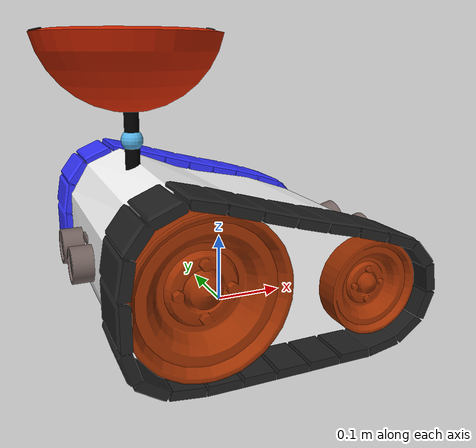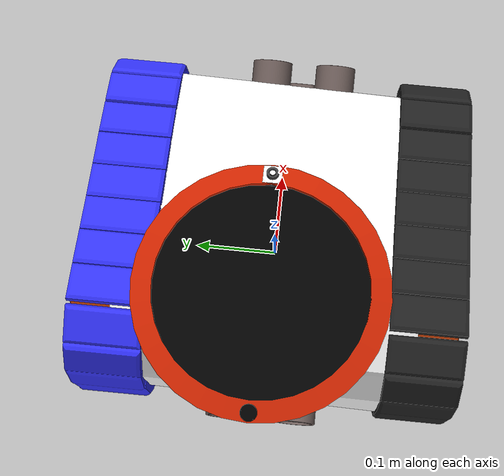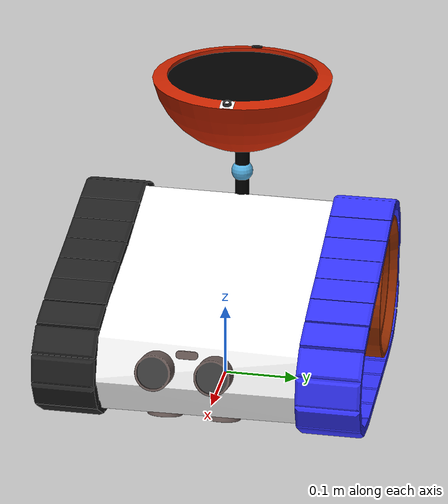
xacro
<?xml version="1.0"?>
<robot xmlns:xacro="http://www.ros.org/wiki/xacro" name="robot">

    <xacro:include filename="robot_core.xacro" />
    <xacro:include filename="ultrasonic_front.xacro" />
    <xacro:include filename="ultrasonic_bottom_front.xacro" />
    <xacro:include filename="ultrasonic_back.xacro" />
    <xacro:include filename="ultrasonic_bottom_back.xacro" />
    <xacro:include filename="camera.xacro" />
    <xacro:include filename="microphone.xacro" />
</robot>

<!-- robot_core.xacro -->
<robot xmlns:xacro="http://www.ros.org/wiki/xacro">

    <xacro:include filename="inertia_macros.xacro"/>

    <material name="white">
        <color rgba="1 1 1 1" />
    </material>

    <material name="orange">
        <color rgba="1 0.3 0.1 1" />
    </material>

    <material name="blue">
        <color rgba="0.2 0.2 1 1" />
    </material>

    <material name="black">
        <color rgba="0 0 0 1" />
    </material>

    <!-- BASE -->

    <link name="base_link">
    </link>

    <!-- CHASSIS -->

    <joint name="chassis_joint" type="fixed" >
        <parent link="base_link" />
        <child link="chassis" />
        <origin xyz="0 0 0" rpy="0 0 ${pi/2}"/>
    </joint>

    <link name="chassis">
        <visual>
            <origin xyz="0 0.02 0.095"/>
            <geometry>
                <mesh filename="package://fonbot_package/models/chassis2.dae" scale="0.4 0.2 0.2"/>
            </geometry>
            <material name="white" />
        </visual>
        <collision>
            <origin xyz="0 0.02 0.095"/>
            <geometry>
                <mesh filename="package://fonbot_package/models/chassis2.dae" scale="0.4 0.2 0.2"/>
            </geometry>
        </collision>
        <xacro:inertial_box mass="0.5" x="0.4" y="0.4" z="0.2">
            <origin xyz="0 0.02 0.095" rpy="0 0 0"/>
        </xacro:inertial_box>
    </link>

    <!-- LEFT TRACK -->

    <joint name="left_track_joint" type="fixed">
        <parent link="chassis"/>
        <child link="left_track"/>
        <origin xyz="0.175 0 0.075" rpy="0 0 0"/>
        <axis xyz="-1 0 0" />
    </joint>

    <link name="left_track">
        <visual>
            <geometry>
                <mesh filename="package://fonbot_package/models/tank-track-asym.dae" scale="0.2 0.2 0.2"/>
            </geometry>
            <material name="blue"/>
        </visual>
        <collision>
            <geometry>
                <mesh filename="package://fonbot_package/models/tank-track-asym.dae" scale="0.2 0.2 0.2"/>
            </geometry>
        </collision>
        <xacro:inertial_box mass="0.1" x="0.1" y="0.4" z="0.15">
            <origin xyz="0 0 0" rpy="0 0 0"/>
        </xacro:inertial_box>
    </link>

    <!-- LEFT TRACK WHEELS -->
    <joint name="left_track_large_wheel_joint" type="continuous">
        <parent link="left_track"/>
        <child link="large_wheel_left"/>
        <origin xyz="0 0.095 0.03"/>
        <axis xyz="-1 0 0"/>
    </joint>

    <link name="large_wheel_left">
        <visual>
            <geometry>
                <mesh filename="package://fonbot_package/models/tank-wheel.dae" scale="0.32 0.32 0.32"/>
            </geometry>
        </visual>
        <collision>
            <geometry>
                <mesh filename="package://fonbot_package/models/tank-wheel.dae" scale="0.32 0.32 0.32"/>
            </geometry>
        </collision>
        <xacro:inertial_cylinder mass="0.1" length="0.05" radius="0.1">
            <origin xyz="0 0 0" rpy="0 ${pi/2} 0" />
        </xacro:inertial_cylinder>
    </link>

    <joint name="left_track_small_wheel_joint" type="continuous">
        <parent link="left_track"/>
        <child link="small_wheel_left"/>
        <origin xyz="0 -0.13 0"/>
        <axis xyz="-1 0 0"/>
    </joint>

    <link name="small_wheel_left">
        <visual>
            <geometry>
                <mesh filename="package://fonbot_package/models/tank-wheel.dae" scale="0.2 0.2 0.2"/>
            </geometry>
        </visual>
        <collision>
            <geometry>
                <mesh filename="package://fonbot_package/models/tank-wheel.dae" scale="0.2 0.2 0.2"/>
            </geometry>
        </collision>
        <xacro:inertial_cylinder mass="0.05" length="0.05" radius="0.05">
            <origin xyz="0 0 0" rpy="0 ${pi/2} 0" />
        </xacro:inertial_cylinder>
    </link>

    <!-- RIGHT TRACK -->

    <joint name="right_track_joint" type="fixed">
        <parent link="chassis"/>
        <child link="right_track"/>
        <origin xyz="-0.175 0 0.075" rpy="0 0 0" />
        <axis xyz="0 0 -1" />
    </joint>

    <link name="right_track">
        <visual>
            <geometry>
                <mesh filename="package://fonbot_package/models/tank-track-asym.dae" scale="0.2 0.2 0.2"/>
            </geometry>
        </visual>
        <collision>
            <geometry>
                <mesh filename="package://fonbot_package/models/tank-track-asym.dae" scale="0.2 0.2 0.2"/>
            </geometry>
        </collision>
        <xacro:inertial_box mass="0.1" x="0.1" y="0.4" z="0.15">
            <origin xyz="0 0 0" rpy="0 0 0"/>
        </xacro:inertial_box>
    </link>

    <!-- RIGHT TRACK WHEELS -->
    <joint name="right_track_large_wheel_joint" type="continuous">
        <parent link="right_track"/>
        <child link="large_wheel_right"/>
        <origin xyz="0 0.095 0.03" rpy="0 0 ${pi}"/>
        <axis xyz="1 0 0"/>
    </joint>

    <link name="large_wheel_right">
        <visual>
            <geometry>
                <mesh filename="package://fonbot_package/models/tank-wheel.dae" scale="0.32 0.32 0.32"/>
            </geometry>
        </visual>
        <collision>
            <geometry>
                <mesh filename="package://fonbot_package/models/tank-wheel.dae" scale="0.32 0.32 0.32"/>
            </geometry>
        </collision>
        <xacro:inertial_cylinder mass="0.1" length="0.05" radius="0.1">
            <origin xyz="0 0 0" rpy="0 ${pi/2} 0" />
        </xacro:inertial_cylinder>
    </link>

    <joint name="right_track_small_wheel_joint" type="continuous">
        <parent link="right_track"/>
        <child link="small_wheel_right"/>
        <origin xyz="0 -0.13 0" rpy="0 0 ${pi}"/>
        <axis xyz="1 0 0"/>
    </joint>

    <link name="small_wheel_right">
        <visual>
            <geometry>
                <mesh filename="package://fonbot_package/models/tank-wheel.dae" scale="0.2 0.2 0.2"/>
            </geometry>
        </visual>
        <collision>
            <geometry>
                <mesh filename="package://fonbot_package/models/tank-wheel.dae" scale="0.2 0.2 0.2"/>
            </geometry>
        </collision>
        <xacro:inertial_cylinder mass="0.1" length="0.05" radius="0.05">
            <origin xyz="0 0 0" rpy="0 ${pi/2} 0" />
        </xacro:inertial_cylinder>
    </link>

    <!-- HEAD ARM -->
    <joint name="chassis_connector_joint" type="fixed">
        <parent link="chassis" />
        <child link="chassis_connector" />
        <origin xyz="0 0.125 0.225" />
    </joint>

    <link name="chassis_connector">
        <visual>
            <geometry>
                <cylinder radius="0.01" length="0.05" />
            </geometry>
            <material name="black" />
        </visual>
        <collision>
            <geometry>
                <cylinder radius="0.01" length="0.05" />
            </geometry>
        </collision>
        <xacro:inertial_cylinder mass="0.01" length="0.05" radius="0.01">
            <origin xyz="0 0 0" rpy="0 0 0" />
        </xacro:inertial_cylinder>
    </link>

    <joint name="head_rotation_point_joint" type="fixed">
        <parent link="chassis_connector"/>
        <child link="head_rotation_point"/>
        <origin xyz="0 0 0.025" rpy="0.0 0.0 0.0"/>
    </joint>

    <link name="head_rotation_point">
        <visual>
            <geometry>
                <sphere radius="0.015"/>
            </geometry>
        </visual>
        <collision>
            <geometry>
                <sphere radius="0.015"/>
            </geometry>
        </collision>
        <xacro:inertial_sphere mass="0.01" radius="0.015">
            <origin xyz="0 0 0" rpy="0 0 0" />
        </xacro:inertial_sphere>
    </link>

    <joint name="head_connector_joint" type="revolute">
        <parent link="head_rotation_point" />
        <child link="head_connector" />
        <origin xyz="0 0 0.0075" />
        <limit effort="1000.0" lower="0.0" upper="${4*pi/7}" velocity="0.5"/>
        <axis xyz="-1 0 0"/>
    </joint>

    <link name="head_connector">
        <visual>
            <origin xyz="0 0 0.025"/>
            <geometry>
                <cylinder radius="0.01" length="0.05" />
            </geometry>
            <material name="black" />
        </visual>
        <collision>
            <origin xyz="0 0 0.025"/>
            <geometry>
                <cylinder radius="0.01" length="0.05" />
            </geometry>
        </collision>
        <xacro:inertial_cylinder mass="0.01" length="0.05" radius="0.01">
            <origin xyz="0 0 0" rpy="0 0 0" />
        </xacro:inertial_cylinder>
    </link>

    <!-- HEAD -->

    <joint name="head_joint" type="fixed">
        <parent link="head_connector"/>
        <child link="head"/>
        <origin xyz="0 0 0.05" rpy="${pi/2} 0 0"/>
    </joint>

    <link name="head">
        <visual>
            <origin xyz="0 0.05 0"/>
            <geometry>
                <mesh filename="package://fonbot_package/models/head.dae" scale="0.2 0.2 0.2"/>
            </geometry>
        </visual>
        <collision>
            <origin xyz="0 0.05 0"/>
            <geometry>
                <mesh filename="package://fonbot_package/models/head.dae" scale="0.2 0.2 0.2"/>
            </geometry>
        </collision>
        <xacro:inertial_box mass="0.01" x="0.2" y="0.08" z="0.2">
            <origin xyz="0 0.05 0" rpy="0 0 0" />
        </xacro:inertial_box>
    </link>

</robot>

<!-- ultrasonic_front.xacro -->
<robot xmlns:xacro="http://www.ros.org/wiki/xacro">

    <xacro:include filename="inertia_macros.xacro" />
    <joint name="ultrasonic_front_joint" type="fixed">
        <parent link="chassis" />
        <child link="ultrasonic_front" />
        <origin xyz="0 0.205 0.125" />
    </joint>

    <link name="ultrasonic_front">
        <visual>
            <origin xyz="-0.01 -0.02 -0.07" rpy="${-pi/2} ${pi/2} ${pi/2}" />
            <geometry>
                <mesh filename="package://fonbot_package/models/ultrasonic.dae" scale="0.3 0.3 0.3" />
            </geometry>
        </visual>
        <collision>
            <origin xyz="-0.01 -0.02 -0.07" rpy="${-pi/2} ${pi/2} ${pi/2}" />
            <geometry>
                <mesh filename="package://fonbot_package/models/ultrasonic.dae" scale="0.3 0.3 0.3" />
            </geometry>
        </collision>
    </link>

</robot>

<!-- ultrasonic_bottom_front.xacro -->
<robot xmlns:xacro="http://www.ros.org/wiki/xacro">

    <xacro:include filename="inertia_macros.xacro" />
    <joint name="ultrasonic_bottom_front_joint" type="fixed">
        <parent link="chassis" />
        <child link="ultrasonic_bottom_front" />
        <origin xyz="0 0.205 0.125" />
    </joint>

    <link name="ultrasonic_bottom_front">
        <visual>
            <origin xyz="-0.01 -0.11 -0.098" rpy="${-pi/2} ${10*pi/11} ${pi/2}" />
            <geometry>
                <mesh filename="package://fonbot_package/models/ultrasonic.dae" scale="0.3 0.3 0.3" />
            </geometry>
        </visual>
        <collision>
             <origin xyz="-0.01 -0.11 -0.1" rpy="${-pi/2} ${10*pi/11} ${pi/2}" />
            <geometry>
                <mesh filename="package://fonbot_package/models/ultrasonic.dae" scale="0.3 0.3 0.3" />
            </geometry>
        </collision>
    </link>

</robot>

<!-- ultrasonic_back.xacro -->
<robot xmlns:xacro="http://www.ros.org/wiki/xacro">

    <xacro:include filename="inertia_macros.xacro" />
    <joint name="ultrasonic_back_joint" type="fixed">
        <parent link="chassis" />
        <child link="ultrasonic_back" />
        <origin xyz="0 0.205 0.125" />
    </joint>

    <link name="ultrasonic_back">
        <visual>
            <origin xyz="-0.01 -0.4 -0.077" rpy="${pi/2} ${7*pi/12} ${pi/2}" />
            <geometry>
                <mesh filename="package://fonbot_package/models/ultrasonic.dae" scale="0.3 0.3 0.3" />
            </geometry>
        </visual>
        <collision>
            <origin xyz="-0.01 -0.4 -0.077" rpy="${pi/2} ${7*pi/12} ${pi/2}" />
            <geometry>
                <mesh filename="package://fonbot_package/models/ultrasonic.dae" scale="0.3 0.3 0.3" />
            </geometry>
        </collision>
    </link>

</robot>

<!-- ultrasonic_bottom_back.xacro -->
<robot xmlns:xacro="http://www.ros.org/wiki/xacro">

    <xacro:include filename="inertia_macros.xacro" />
    <joint name="ultrasonic_bottom_back_joint" type="fixed">
        <parent link="chassis" />
        <child link="ultrasonic_bottom_back" />
        <origin xyz="0 0.205 0.125" />
    </joint>

    <link name="ultrasonic_bottom_back">
        <visual>
            <origin xyz="-0.01 -0.29 -0.1" rpy="${pi/2} ${pi/11} ${pi/2}" />
            <geometry>
                <mesh filename="package://fonbot_package/models/ultrasonic.dae" scale="0.3 0.3 0.3" />
            </geometry>
        </visual>
        <collision>
            <origin xyz="-0.01 -0.4 -0.077" rpy="${pi/2} ${7*pi/12} ${pi/2}" />
            <geometry>
                <mesh filename="package://fonbot_package/models/ultrasonic.dae" scale="0.3 0.3 0.3" />
            </geometry>
        </collision>
    </link>

</robot>

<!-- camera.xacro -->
<robot xmlns:xacro="http://www.ros.org/wiki/xacro">

    <xacro:include filename="inertia_macros.xacro" />
    <joint name="camera_joint" type="fixed">
        <parent link="head" />
        <child link="camera" />
    </joint>

    <link name="camera">
        <visual>
            <origin xyz="0 0.0762 0.111" rpy="${-pi/2} ${3*pi/7} ${pi/2}" />
            <geometry>
                <mesh filename="package://fonbot_package/models/camera.dae" scale="0.017 0.017 0.017" />
            </geometry>
        </visual>
        <collision>
            <origin xyz="0 0.0762 0.111" rpy="${-pi/2} ${3*pi/7} ${pi/2}" />
            <geometry>
                <mesh filename="package://fonbot_package/models/camera.dae" scale="0.017 0.017 0.017" />
            </geometry>
        </collision>
        <xacro:inertial_box mass="0.05" x="0.02" y="0.02" z="0.02">
            <origin xyz="0 0.0762 0.111" rpy="${-pi/2} ${3*pi/7} ${pi/2}" />
        </xacro:inertial_box>
    </link>

</robot>

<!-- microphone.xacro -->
<robot xmlns:xacro="http://www.ros.org/wiki/xacro">

    <xacro:include filename="inertia_macros.xacro" />
    <joint name="microphone_joint" type="fixed">
        <parent link="head" />
        <child link="microphone" />
    </joint>

    <link name="microphone">
        <visual>
            <origin xyz="0 0.08 -0.113" rpy="${pi} ${-3*pi/7} ${pi/2}" />
            <geometry>
                <mesh filename="package://fonbot_package/models/microphone.stl" scale="0.008 0.008 0.008" />
            </geometry>
            <material name="black">
                <color rgba="0 0 0 1" />
            </material>
        </visual>
        <collision>
            <origin xyz="0 0.08 -0.113" rpy="${pi} ${-3*pi/7} ${pi/2}" />
            <geometry>
                <mesh filename="package://fonbot_package/models/microphone.stl" scale="0.008 0.008 0.008" />
            </geometry>
        </collision>
        <xacro:inertial_box mass="0.05" x="0.02" y="0.02" z="0.02">
            <origin xyz="0 0.08 -0.113" rpy="${pi} ${-3*pi/7} ${pi/2}" />
        </xacro:inertial_box>
    </link>

</robot>
